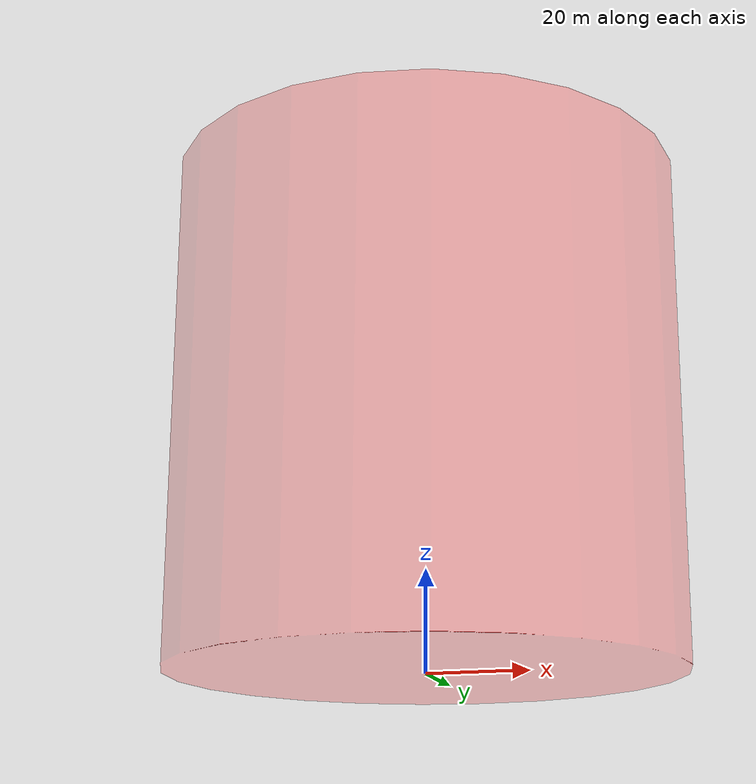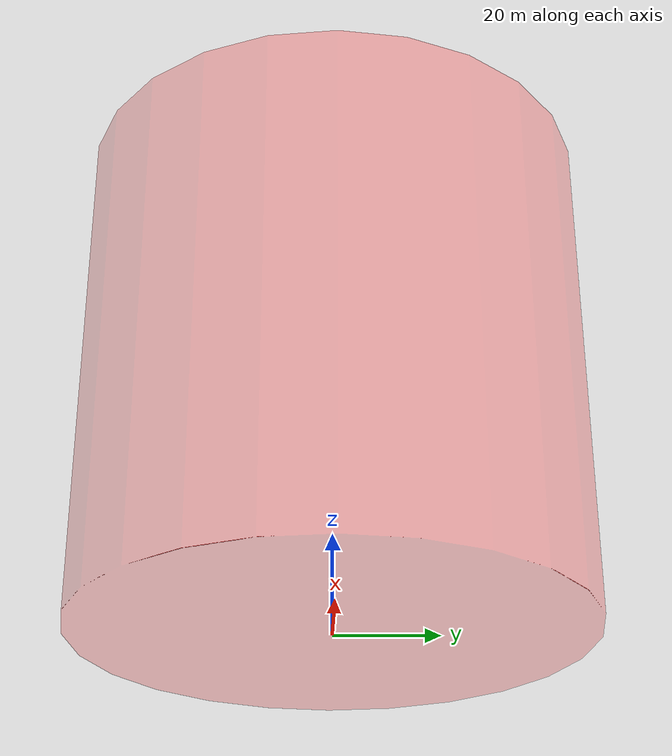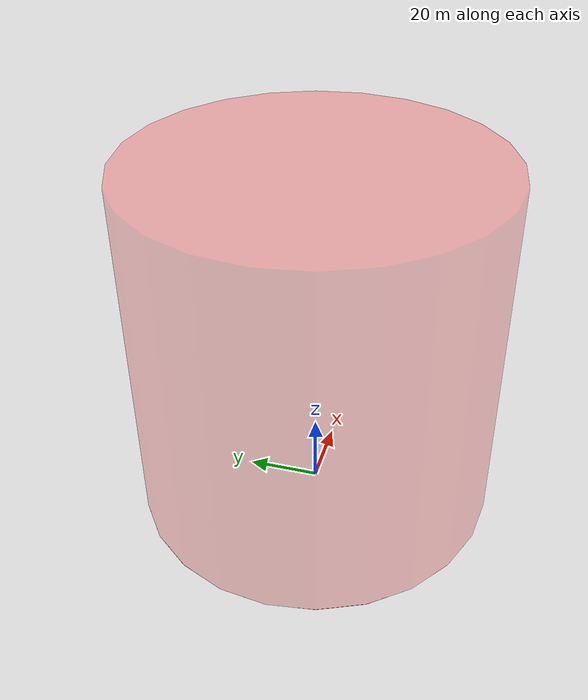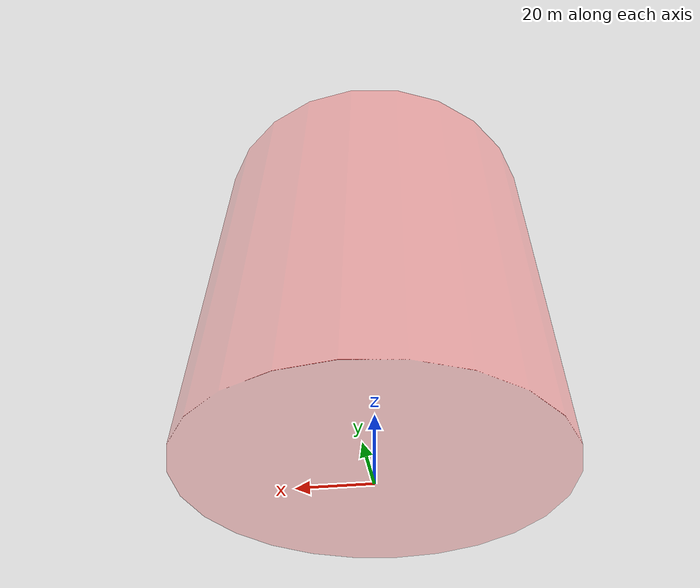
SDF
<?xml version="1.0" encoding="UTF-8"?>
<sdf version='1.9'>
  <model name='teknofest_hss_zone'>
    <static>true</static>
    <link name='link'>
      <!-- Red semi-transparent cylinder: 50m radius default, 100m visible height -->
      <!-- Scale via world spawn pose or model override -->
      <visual name='hss_cylinder'>
        <geometry>
          <cylinder><radius>50</radius><length>100</length></cylinder>
        </geometry>
        <pose>0 0 50 0 0 0</pose>
        <material>
          <ambient>1 0 0 0.25</ambient>
          <diffuse>1 0 0 0.25</diffuse>
          <specular>0.1 0 0 0.1</specular>
        </material>
        <transparency>0.75</transparency>
      </visual>
      <!-- Ground ring to mark base clearly -->
      <visual name='hss_ring'>
        <pose>0 0 0.05 0 0 0</pose>
        <geometry>
          <cylinder><radius>50</radius><length>0.1</length></cylinder>
        </geometry>
        <material>
          <ambient>1 0 0 0.8</ambient>
          <diffuse>1 0 0 0.8</diffuse>
        </material>
      </visual>
    </link>
  </model>
</sdf>
